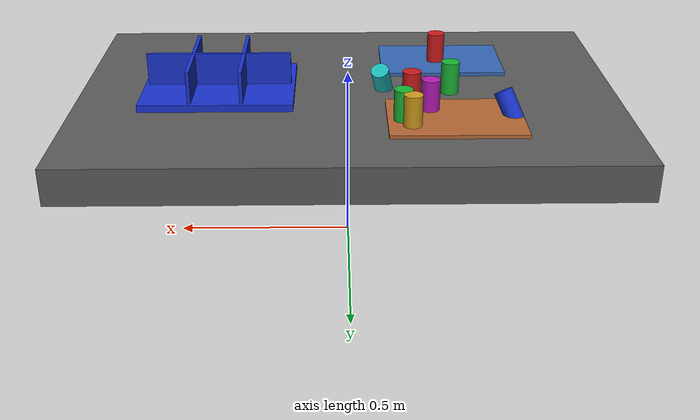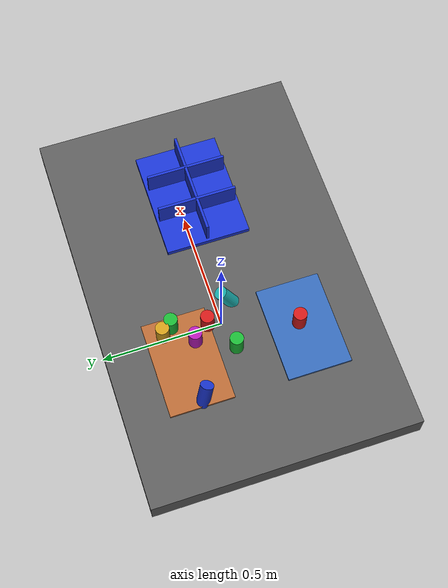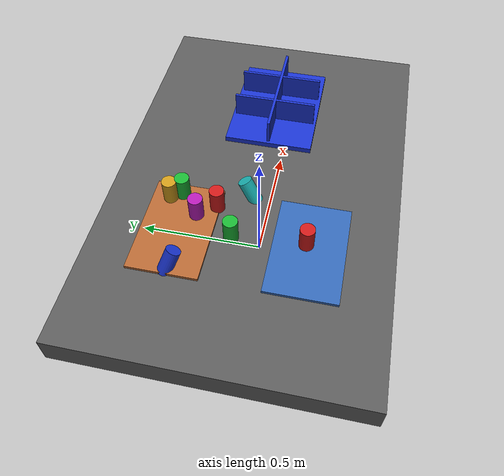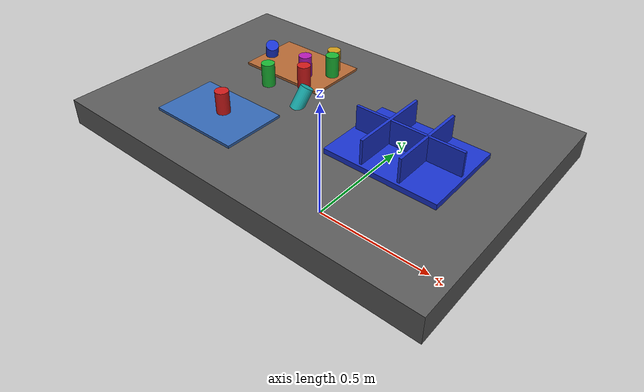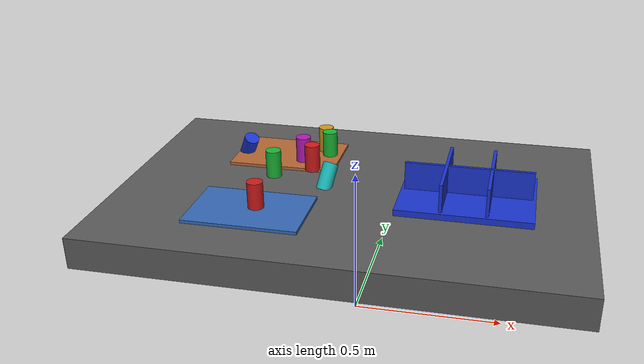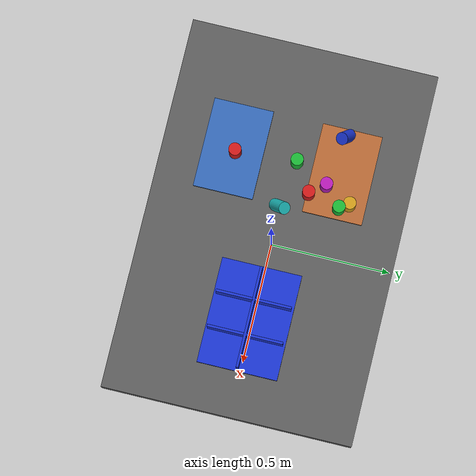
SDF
<?xml version="1.0" ?>
<sdf version="1.9">
  <!-- Standalone M1B scene.  The controller-backed Panda is spawned by the
       existing launch path; this file never alters the frozen M1A cube world. -->
  <world name="industrial_cylinder_v1">
    <physics name="bullet" type="bullet"><max_step_size>0.001</max_step_size><real_time_factor>1.0</real_time_factor></physics>
    <plugin name="gz::sim::systems::Physics" filename="gz-sim-physics-system"><engine><filename>gz-physics-bullet-featherstone-plugin</filename></engine></plugin>
    <plugin name="gz::sim::systems::UserCommands" filename="gz-sim-user-commands-system"/>
    <plugin name="gz::sim::systems::SceneBroadcaster" filename="gz-sim-scene-broadcaster-system"/>
    <plugin name="gz::sim::systems::Sensors" filename="gz-sim-sensors-system"><render_engine>ogre2</render_engine></plugin>
    <gravity>0 0 -9.81</gravity>
    <light type="directional" name="industrial_light"><pose>0 0 5 0 0 0</pose><direction>-0.3 0.2 -0.9</direction><diffuse>0.9 0.9 0.9 1</diffuse></light>
    <model name="industrial_work_table"><static>true</static><link name="link"><pose>0 0 0.4 0 0 0</pose><collision name="collision"><geometry><box><size>1.5 1.0 0.1</size></box></geometry></collision><visual name="visual"><geometry><box><size>1.5 1.0 0.1</size></box></geometry><material><diffuse>0.35 0.35 0.35 1</diffuse></material></visual></link></model>
    <model name="camera_fixture"><static>true</static><link name="camera_rgbd"><pose>-0.80 -0.80 1.40 0 0.77 0.93</pose><sensor name="front_rgbd" type="rgbd_camera"><always_on>1</always_on><update_rate>15</update_rate><topic>/xh/camera/rgbd</topic><camera><horizontal_fov>1.047</horizontal_fov><image><width>640</width><height>480</height><format>R8G8B8</format></image><clip><near>0.1</near><far>4.0</far></clip></camera></sensor></link></model>
    <model name="incoming_zone_a"><static>true</static><link name="link"><pose>-0.28 -0.22 0.455 0 0 0</pose><visual name="visual"><geometry><box><size>0.36 0.24 0.01</size></box></geometry><material><diffuse>0.2 0.4 0.7 1</diffuse></material></visual></link></model>
    <model name="incoming_zone_b"><static>true</static><link name="link"><pose>-0.28 0.22 0.455 0 0 0</pose><visual name="visual"><geometry><box><size>0.36 0.24 0.01</size></box></geometry><material><diffuse>0.7 0.4 0.2 1</diffuse></material></visual></link></model>
    <!-- M1B_RANDOM_PARTS_BEGIN -->
    <model name="cylinder_01"><pose>-0.2650 -0.2093 0.5000 0.0000 0.0000 -2.6489</pose><link name="link"><inertial><mass>0.06</mass></inertial><collision name="collision"><geometry><cylinder><radius>0.025</radius><length>0.09</length></cylinder></geometry></collision><visual name="visual"><geometry><cylinder><radius>0.025</radius><length>0.09</length></cylinder></geometry><material><diffuse>0.800 0.100 0.100 1</diffuse><specular>0.15 0.15 0.15 1</specular></material></visual></link></model>
    <model name="cylinder_02"><pose>-0.1406 0.2369 0.5000 3.1416 0.0000 -0.2106</pose><link name="link"><inertial><mass>0.06</mass></inertial><collision name="collision"><geometry><cylinder><radius>0.025</radius><length>0.09</length></cylinder></geometry></collision><visual name="visual"><geometry><cylinder><radius>0.025</radius><length>0.09</length></cylinder></geometry><material><diffuse>0.100 0.700 0.200 1</diffuse><specular>0.15 0.15 0.15 1</specular></material></visual></link></model>
    <model name="cylinder_03"><pose>-0.4246 0.2014 0.4800 0.4500 -0.3000 1.4150</pose><link name="link"><inertial><mass>0.06</mass></inertial><collision name="collision"><geometry><cylinder><radius>0.025</radius><length>0.09</length></cylinder></geometry></collision><visual name="visual"><geometry><cylinder><radius>0.025</radius><length>0.09</length></cylinder></geometry><material><diffuse>0.100 0.200 0.800 1</diffuse><specular>0.15 0.15 0.15 1</specular></material></visual></link></model>
    <model name="cylinder_04"><pose>-0.1635 0.2748 0.5000 0.0000 0.0000 0.2395</pose><link name="link"><inertial><mass>0.06</mass></inertial><collision name="collision"><geometry><cylinder><radius>0.025</radius><length>0.09</length></cylinder></geometry></collision><visual name="visual"><geometry><cylinder><radius>0.025</radius><length>0.09</length></cylinder></geometry><material><diffuse>0.800 0.600 0.100 1</diffuse><specular>0.15 0.15 0.15 1</specular></material></visual></link></model>
    <model name="cylinder_05"><pose>-0.2174 0.1693 0.5000 3.1416 0.0000 -2.0103</pose><link name="link"><inertial><mass>0.06</mass></inertial><collision name="collision"><geometry><cylinder><radius>0.025</radius><length>0.09</length></cylinder></geometry></collision><visual name="visual"><geometry><cylinder><radius>0.025</radius><length>0.09</length></cylinder></geometry><material><diffuse>0.700 0.100 0.700 1</diffuse><specular>0.15 0.15 0.15 1</specular></material></visual></link></model>
    <model name="cylinder_06"><pose>-0.0954 0.0105 0.4800 0.4500 -0.3000 -2.9468</pose><link name="link"><inertial><mass>0.06</mass></inertial><collision name="collision"><geometry><cylinder><radius>0.025</radius><length>0.09</length></cylinder></geometry></collision><visual name="visual"><geometry><cylinder><radius>0.025</radius><length>0.09</length></cylinder></geometry><material><diffuse>0.100 0.700 0.700 1</diffuse><specular>0.15 0.15 0.15 1</specular></material></visual></link></model>
    <model name="cylinder_07"><pose>-0.1707 0.1090 0.5000 0.0000 0.0000 -1.8425</pose><link name="link"><inertial><mass>0.06</mass></inertial><collision name="collision"><geometry><cylinder><radius>0.025</radius><length>0.09</length></cylinder></geometry></collision><visual name="visual"><geometry><cylinder><radius>0.025</radius><length>0.09</length></cylinder></geometry><material><diffuse>0.800 0.100 0.100 1</diffuse><specular>0.15 0.15 0.15 1</specular></material></visual></link></model>
    <model name="cylinder_08"><pose>-0.2828 0.0359 0.5000 3.1416 0.0000 1.6372</pose><link name="link"><inertial><mass>0.06</mass></inertial><collision name="collision"><geometry><cylinder><radius>0.025</radius><length>0.09</length></cylinder></geometry></collision><visual name="visual"><geometry><cylinder><radius>0.025</radius><length>0.09</length></cylinder></geometry><material><diffuse>0.100 0.700 0.200 1</diffuse><specular>0.15 0.15 0.15 1</specular></material></visual></link></model>
    <!-- M1B_RANDOM_PARTS_END -->
    <model name="blue_partition_bin"><static>true</static><pose>0.36 0 0.45 0 0 0</pose><link name="link"><collision name="floor"><pose>0 0 0.01 0 0 0</pose><geometry><box><size>0.42 0.32 0.02</size></box></geometry></collision><visual name="floor_visual"><pose>0 0 0.01 0 0 0</pose><geometry><box><size>0.42 0.32 0.02</size></box></geometry><material><diffuse>0.1 0.2 0.8 1</diffuse></material></visual><visual name="row_divider"><pose>0 0 0.06 0 0 0</pose><geometry><box><size>0.40 0.01 0.10</size></box></geometry><material><diffuse>0.1 0.2 0.8 1</diffuse></material></visual><visual name="col_divider_a"><pose>-0.07 0 0.06 0 0 0</pose><geometry><box><size>0.01 0.30 0.10</size></box></geometry><material><diffuse>0.1 0.2 0.8 1</diffuse></material></visual><visual name="col_divider_b"><pose>0.07 0 0.06 0 0 0</pose><geometry><box><size>0.01 0.30 0.10</size></box></geometry><material><diffuse>0.1 0.2 0.8 1</diffuse></material></visual></link></model>
    <!-- Reserved only: second table, bin transport corridor, stackable-bin
         collision volume, and second arm mounting namespace. -->
  </world>
</sdf>
